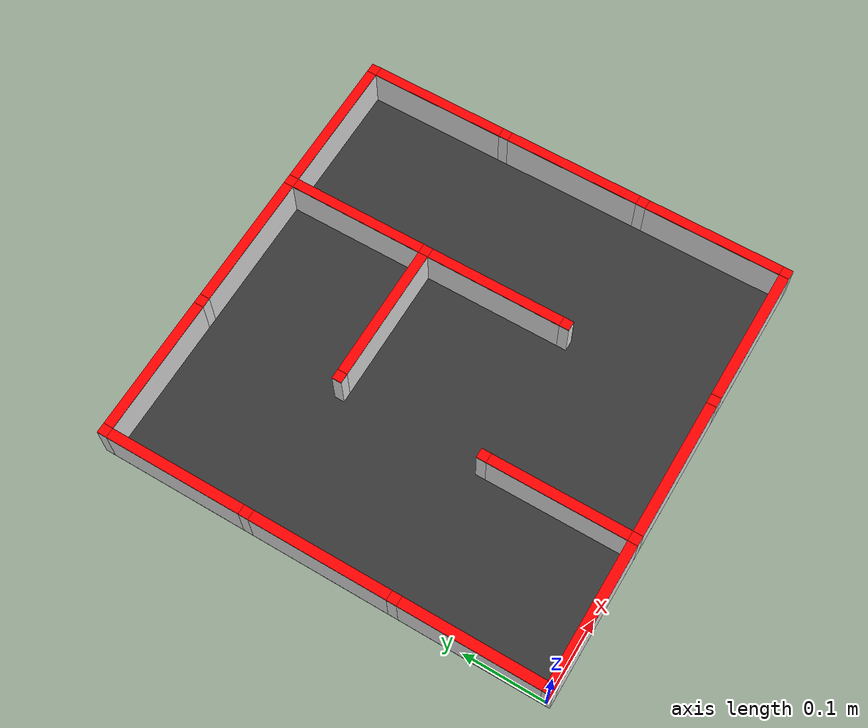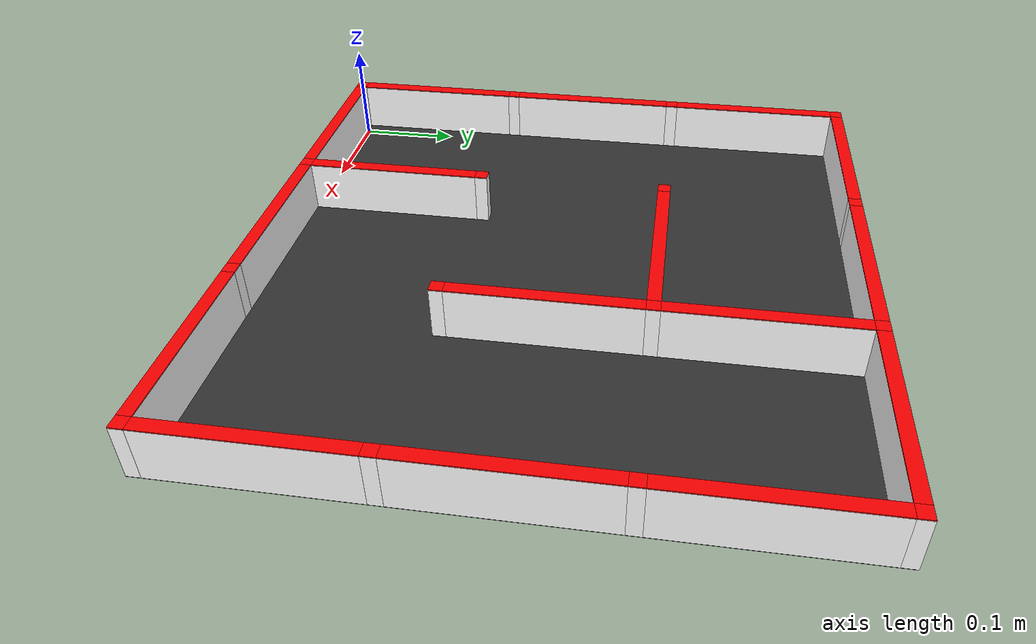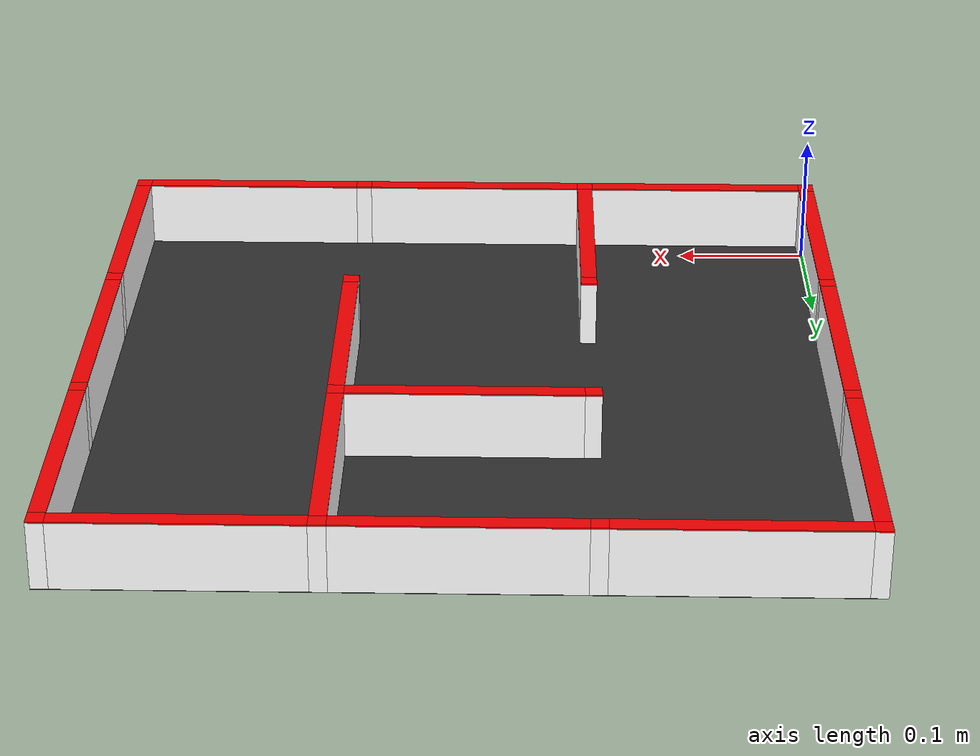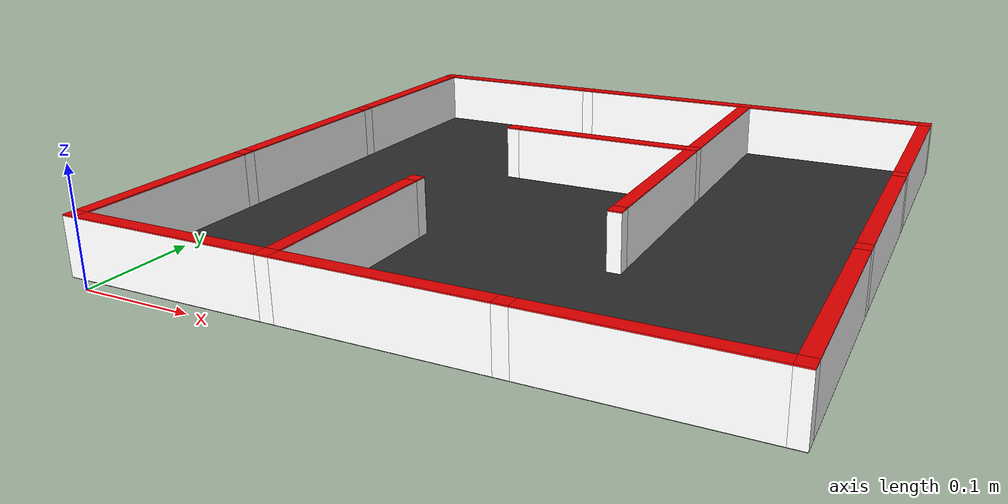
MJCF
<mujoco model="maze">
<compiler angle="degree" coordinate="local" inertiafromgeom="true" />
    <option integrator="RK4" />
    <worldbody>
        <!--ベース板-->
        <body name="base_plate" pos="0.27 0.27 0.0125">
        <geom type="plane" mass="0.1" size="0.276 0.276 0.006" rgba="0.2 0.2 0.2 1" friction="0.0 0.0 0.0"/>
        </body>

        <!-- Column 1-->
        <body pos="0.0 0.0 0.037">
            <body pos="0 0 -0.0005">
                <geom type="box" mass="0.01" size="0.006 0.006 0.0245" rgba="1 1 1 1"/>
            </body>
            <!--柱上赤蓋-->
            <body pos="0 0 0.0245">
                <geom type="box" mass="0.01" size="0.006 0.006 0.0005" rgba="1 0 0 1"/>
            </body>
        </body>

        <!-- Column 2-->
        <body pos="0.18 0.0 0.037">
            <body pos="0 0 -0.0005">
                <geom type="box" mass="0.01" size="0.006 0.006 0.0245" rgba="1 1 1 1"/>
            </body>
            <!--柱上赤蓋-->
            <body pos="0 0 0.0245">
                <geom type="box" mass="0.01" size="0.006 0.006 0.0005" rgba="1 0 0 1"/>
            </body>
        </body>

        <!-- Column 3-->
        <body pos="0.36 0.0 0.037">
            <body pos="0 0 -0.0005">
                <geom type="box" mass="0.01" size="0.006 0.006 0.0245" rgba="1 1 1 1"/>
            </body>
            <!--柱上赤蓋-->
            <body pos="0 0 0.0245">
                <geom type="box" mass="0.01" size="0.006 0.006 0.0005" rgba="1 0 0 1"/>
            </body>
        </body>

        <!-- Column 4-->
        <body pos="0.54 0.0 0.037">
            <body pos="0 0 -0.0005">
                <geom type="box" mass="0.01" size="0.006 0.006 0.0245" rgba="1 1 1 1"/>
            </body>
            <!--柱上赤蓋-->
            <body pos="0 0 0.0245">
                <geom type="box" mass="0.01" size="0.006 0.006 0.0005" rgba="1 0 0 1"/>
            </body>
        </body>

        <!-- Column 5-->
        <body pos="0.0 0.18 0.037">
            <body pos="0 0 -0.0005">
                <geom type="box" mass="0.01" size="0.006 0.006 0.0245" rgba="1 1 1 1"/>
            </body>
            <!--柱上赤蓋-->
            <body pos="0 0 0.0245">
                <geom type="box" mass="0.01" size="0.006 0.006 0.0005" rgba="1 0 0 1"/>
            </body>
        </body>

        <!-- Column 6-->
        <body pos="0.18 0.18 0.037">
            <body pos="0 0 -0.0005">
                <geom type="box" mass="0.01" size="0.006 0.006 0.0245" rgba="1 1 1 1"/>
            </body>
            <!--柱上赤蓋-->
            <body pos="0 0 0.0245">
                <geom type="box" mass="0.01" size="0.006 0.006 0.0005" rgba="1 0 0 1"/>
            </body>
        </body>

        <!-- Column 7-->
        <body pos="0.36 0.18 0.037">
            <body pos="0 0 -0.0005">
                <geom type="box" mass="0.01" size="0.006 0.006 0.0245" rgba="1 1 1 1"/>
            </body>
            <!--柱上赤蓋-->
            <body pos="0 0 0.0245">
                <geom type="box" mass="0.01" size="0.006 0.006 0.0005" rgba="1 0 0 1"/>
            </body>
        </body>

        <!-- Column 8-->
        <body pos="0.54 0.18 0.037">
            <body pos="0 0 -0.0005">
                <geom type="box" mass="0.01" size="0.006 0.006 0.0245" rgba="1 1 1 1"/>
            </body>
            <!--柱上赤蓋-->
            <body pos="0 0 0.0245">
                <geom type="box" mass="0.01" size="0.006 0.006 0.0005" rgba="1 0 0 1"/>
            </body>
        </body>

        <!-- Column 9-->
        <body pos="0.0 0.36 0.037">
            <body pos="0 0 -0.0005">
                <geom type="box" mass="0.01" size="0.006 0.006 0.0245" rgba="1 1 1 1"/>
            </body>
            <!--柱上赤蓋-->
            <body pos="0 0 0.0245">
                <geom type="box" mass="0.01" size="0.006 0.006 0.0005" rgba="1 0 0 1"/>
            </body>
        </body>

        <!-- Column 10-->
        <body pos="0.18 0.36 0.037">
            <body pos="0 0 -0.0005">
                <geom type="box" mass="0.01" size="0.006 0.006 0.0245" rgba="1 1 1 1"/>
            </body>
            <!--柱上赤蓋-->
            <body pos="0 0 0.0245">
                <geom type="box" mass="0.01" size="0.006 0.006 0.0005" rgba="1 0 0 1"/>
            </body>
        </body>

        <!-- Column 11-->
        <body pos="0.36 0.36 0.037">
            <body pos="0 0 -0.0005">
                <geom type="box" mass="0.01" size="0.006 0.006 0.0245" rgba="1 1 1 1"/>
            </body>
            <!--柱上赤蓋-->
            <body pos="0 0 0.0245">
                <geom type="box" mass="0.01" size="0.006 0.006 0.0005" rgba="1 0 0 1"/>
            </body>
        </body>

        <!-- Column 12-->
        <body pos="0.54 0.36 0.037">
            <body pos="0 0 -0.0005">
                <geom type="box" mass="0.01" size="0.006 0.006 0.0245" rgba="1 1 1 1"/>
            </body>
            <!--柱上赤蓋-->
            <body pos="0 0 0.0245">
                <geom type="box" mass="0.01" size="0.006 0.006 0.0005" rgba="1 0 0 1"/>
            </body>
        </body>

        <!-- Column 13-->
        <body pos="0.0 0.54 0.037">
            <body pos="0 0 -0.0005">
                <geom type="box" mass="0.01" size="0.006 0.006 0.0245" rgba="1 1 1 1"/>
            </body>
            <!--柱上赤蓋-->
            <body pos="0 0 0.0245">
                <geom type="box" mass="0.01" size="0.006 0.006 0.0005" rgba="1 0 0 1"/>
            </body>
        </body>

        <!-- Column 14-->
        <body pos="0.18 0.54 0.037">
            <body pos="0 0 -0.0005">
                <geom type="box" mass="0.01" size="0.006 0.006 0.0245" rgba="1 1 1 1"/>
            </body>
            <!--柱上赤蓋-->
            <body pos="0 0 0.0245">
                <geom type="box" mass="0.01" size="0.006 0.006 0.0005" rgba="1 0 0 1"/>
            </body>
        </body>

        <!-- Column 15-->
        <body pos="0.36 0.54 0.037">
            <body pos="0 0 -0.0005">
                <geom type="box" mass="0.01" size="0.006 0.006 0.0245" rgba="1 1 1 1"/>
            </body>
            <!--柱上赤蓋-->
            <body pos="0 0 0.0245">
                <geom type="box" mass="0.01" size="0.006 0.006 0.0005" rgba="1 0 0 1"/>
            </body>
        </body>

        <!-- Column 16-->
        <body pos="0.54 0.54 0.037">
            <body pos="0 0 -0.0005">
                <geom type="box" mass="0.01" size="0.006 0.006 0.0245" rgba="1 1 1 1"/>
            </body>
            <!--柱上赤蓋-->
            <body pos="0 0 0.0245">
                <geom type="box" mass="0.01" size="0.006 0.006 0.0005" rgba="1 0 0 1"/>
            </body>
        </body>

        <!-- Wall 1-->
        <body pos="0.09 0.0 0.037">
            <body pos="0 0 -0.0005">
                <geom type="box" mass="0.01" size="0.084 0.006 0.0245" rgba="1 1 1 1"/>
            </body>
            <!--壁上赤蓋-->
            <body pos="0 0 0.0245">
                <geom type="box" mass="0.01" size="0.084 0.006 0.0005" rgba="1 0 0 1"/>
            </body>
        </body>

        <!-- Wall 2-->
        <body pos="0.27 0.0 0.037">
            <body pos="0 0 -0.0005">
                <geom type="box" mass="0.01" size="0.084 0.006 0.0245" rgba="1 1 1 1"/>
            </body>
            <!--壁上赤蓋-->
            <body pos="0 0 0.0245">
                <geom type="box" mass="0.01" size="0.084 0.006 0.0005" rgba="1 0 0 1"/>
            </body>
        </body>

        <!-- Wall 3-->
        <body pos="0.44999999999999996 0.0 0.037">
            <body pos="0 0 -0.0005">
                <geom type="box" mass="0.01" size="0.084 0.006 0.0245" rgba="1 1 1 1"/>
            </body>
            <!--壁上赤蓋-->
            <body pos="0 0 0.0245">
                <geom type="box" mass="0.01" size="0.084 0.006 0.0005" rgba="1 0 0 1"/>
            </body>
        </body>

        <!-- Wall 4-->
        <body pos="0.27 0.36 0.037">
            <body pos="0 0 -0.0005">
                <geom type="box" mass="0.01" size="0.084 0.006 0.0245" rgba="1 1 1 1"/>
            </body>
            <!--壁上赤蓋-->
            <body pos="0 0 0.0245">
                <geom type="box" mass="0.01" size="0.084 0.006 0.0005" rgba="1 0 0 1"/>
            </body>
        </body>

        <!-- Wall 5-->
        <body pos="0.09 0.54 0.037">
            <body pos="0 0 -0.0005">
                <geom type="box" mass="0.01" size="0.084 0.006 0.0245" rgba="1 1 1 1"/>
            </body>
            <!--壁上赤蓋-->
            <body pos="0 0 0.0245">
                <geom type="box" mass="0.01" size="0.084 0.006 0.0005" rgba="1 0 0 1"/>
            </body>
        </body>

        <!-- Wall 6-->
        <body pos="0.27 0.54 0.037">
            <body pos="0 0 -0.0005">
                <geom type="box" mass="0.01" size="0.084 0.006 0.0245" rgba="1 1 1 1"/>
            </body>
            <!--壁上赤蓋-->
            <body pos="0 0 0.0245">
                <geom type="box" mass="0.01" size="0.084 0.006 0.0005" rgba="1 0 0 1"/>
            </body>
        </body>

        <!-- Wall 7-->
        <body pos="0.44999999999999996 0.54 0.037">
            <body pos="0 0 -0.0005">
                <geom type="box" mass="0.01" size="0.084 0.006 0.0245" rgba="1 1 1 1"/>
            </body>
            <!--壁上赤蓋-->
            <body pos="0 0 0.0245">
                <geom type="box" mass="0.01" size="0.084 0.006 0.0005" rgba="1 0 0 1"/>
            </body>
        </body>

        <!-- Wall 8-->
        <body pos="0.0 0.09 0.037">
            <body pos="0 0 -0.0005">
                <geom type="box" mass="0.01" size="0.006 0.084 0.0245" rgba="1 1 1 1"/>
            </body>
            <!--壁上赤蓋-->
            <body pos="0 0 0.0245">
                <geom type="box" mass="0.01" size="0.006 0.084 0.0005" rgba="1 0 0 1"/>
            </body>
        </body>

        <!-- Wall 9-->
        <body pos="0.18 0.09 0.037">
            <body pos="0 0 -0.0005">
                <geom type="box" mass="0.01" size="0.006 0.084 0.0245" rgba="1 1 1 1"/>
            </body>
            <!--壁上赤蓋-->
            <body pos="0 0 0.0245">
                <geom type="box" mass="0.01" size="0.006 0.084 0.0005" rgba="1 0 0 1"/>
            </body>
        </body>

        <!-- Wall 10-->
        <body pos="0.54 0.09 0.037">
            <body pos="0 0 -0.0005">
                <geom type="box" mass="0.01" size="0.006 0.084 0.0245" rgba="1 1 1 1"/>
            </body>
            <!--壁上赤蓋-->
            <body pos="0 0 0.0245">
                <geom type="box" mass="0.01" size="0.006 0.084 0.0005" rgba="1 0 0 1"/>
            </body>
        </body>

        <!-- Wall 11-->
        <body pos="0.0 0.27 0.037">
            <body pos="0 0 -0.0005">
                <geom type="box" mass="0.01" size="0.006 0.084 0.0245" rgba="1 1 1 1"/>
            </body>
            <!--壁上赤蓋-->
            <body pos="0 0 0.0245">
                <geom type="box" mass="0.01" size="0.006 0.084 0.0005" rgba="1 0 0 1"/>
            </body>
        </body>

        <!-- Wall 12-->
        <body pos="0.36 0.27 0.037">
            <body pos="0 0 -0.0005">
                <geom type="box" mass="0.01" size="0.006 0.084 0.0245" rgba="1 1 1 1"/>
            </body>
            <!--壁上赤蓋-->
            <body pos="0 0 0.0245">
                <geom type="box" mass="0.01" size="0.006 0.084 0.0005" rgba="1 0 0 1"/>
            </body>
        </body>

        <!-- Wall 13-->
        <body pos="0.54 0.27 0.037">
            <body pos="0 0 -0.0005">
                <geom type="box" mass="0.01" size="0.006 0.084 0.0245" rgba="1 1 1 1"/>
            </body>
            <!--壁上赤蓋-->
            <body pos="0 0 0.0245">
                <geom type="box" mass="0.01" size="0.006 0.084 0.0005" rgba="1 0 0 1"/>
            </body>
        </body>

        <!-- Wall 14-->
        <body pos="0.0 0.44999999999999996 0.037">
            <body pos="0 0 -0.0005">
                <geom type="box" mass="0.01" size="0.006 0.084 0.0245" rgba="1 1 1 1"/>
            </body>
            <!--壁上赤蓋-->
            <body pos="0 0 0.0245">
                <geom type="box" mass="0.01" size="0.006 0.084 0.0005" rgba="1 0 0 1"/>
            </body>
        </body>

        <!-- Wall 15-->
        <body pos="0.36 0.44999999999999996 0.037">
            <body pos="0 0 -0.0005">
                <geom type="box" mass="0.01" size="0.006 0.084 0.0245" rgba="1 1 1 1"/>
            </body>
            <!--壁上赤蓋-->
            <body pos="0 0 0.0245">
                <geom type="box" mass="0.01" size="0.006 0.084 0.0005" rgba="1 0 0 1"/>
            </body>
        </body>

        <!-- Wall 16-->
        <body pos="0.54 0.44999999999999996 0.037">
            <body pos="0 0 -0.0005">
                <geom type="box" mass="0.01" size="0.006 0.084 0.0245" rgba="1 1 1 1"/>
            </body>
            <!--壁上赤蓋-->
            <body pos="0 0 0.0245">
                <geom type="box" mass="0.01" size="0.006 0.084 0.0005" rgba="1 0 0 1"/>
            </body>
        </body>
    </worldbody>
</mujoco>
